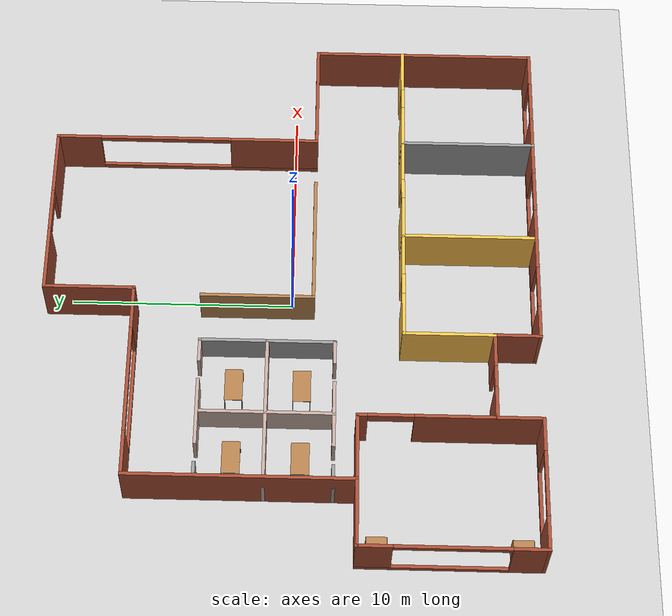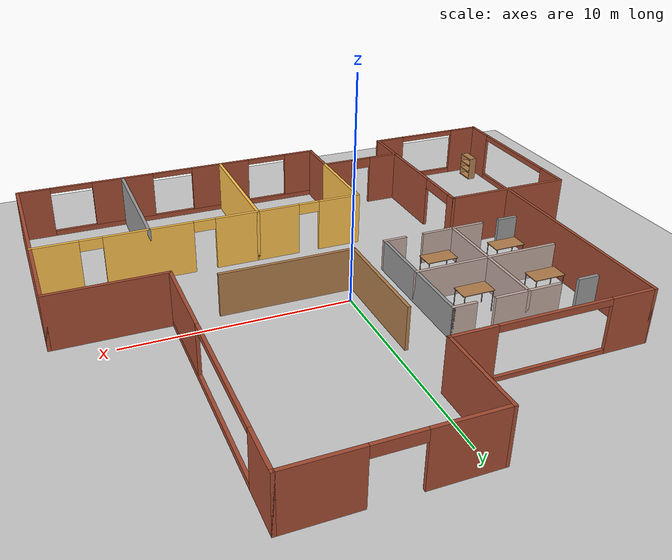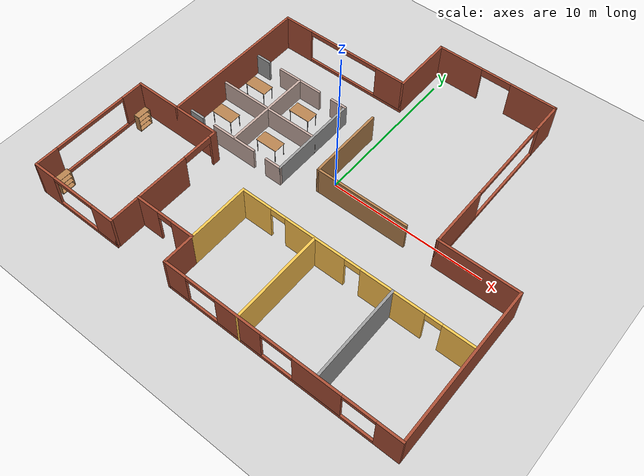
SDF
<sdf version="1.6">
 <world name="default">
  <model name="ground_plane">
   <static>1</static>
   <link name="link">
    <collision name="collision">
     <geometry><plane><normal>0 0 1</normal><size>100 100</size></plane></geometry>
     <surface><friction><ode><mu>100</mu><mu2>50</mu2></ode></friction></surface>
    </collision>
    <visual name="visual">
     <cast_shadows>0</cast_shadows>
     <geometry><plane><normal>0 0 1</normal><size>100 100</size></plane></geometry>
     <material>
      <script><uri>file://media/materials/scripts/gazebo.material</uri><name>Gazebo/Grey</name></script>
     </material>
    </visual>
   </link>
  </model>
  <model name="building">
   <pose>-0.02604 0.0665 0 0 -0 0</pose>
   <link name="Wall_0">
    <pose>-9.5 -11 0 0 -0 0</pose>
    <visual name="Wall_0_Visual_0">
     <pose>-2.2875 0 1.25 0 -0 0</pose>
     <geometry><box><size>1.575 0.15 2.5</size></box></geometry>
     <material>
      <script><uri>file://media/materials/scripts/gazebo.material</uri><name>Gazebo/Bricks</name></script>
      <ambient>1 1 1 1</ambient>
     </material>
     <meta><layer>0</layer></meta>
    </visual>
    <collision name="Wall_0_Collision_0">
     <geometry><box><size>1.575 0.15 2.5</size></box></geometry>
     <pose>-2.2875 0 1.25 0 -0 0</pose>
    </collision>
    <visual name="Wall_0_Visual_1">
     <pose>0.7875 0 0.125 0 -0 0</pose>
     <geometry><box><size>4.575 0.15 0.25</size></box></geometry>
     <material>
      <script><uri>file://media/materials/scripts/gazebo.material</uri><name>Gazebo/Bricks</name></script>
      <ambient>1 1 1 1</ambient>
     </material>
     <meta><layer>0</layer></meta>
    </visual>
    <collision name="Wall_0_Collision_1">
     <geometry><box><size>4.575 0.15 0.25</size></box></geometry>
     <pose>0.7875 0 0.125 0 -0 0</pose>
    </collision>
    <visual name="Wall_0_Visual_2">
     <pose>2.2875 0 1.375 0 -0 0</pose>
     <geometry><box><size>1.575 0.15 2.25</size></box></geometry>
     <material>
      <script><uri>file://media/materials/scripts/gazebo.material</uri><name>Gazebo/Bricks</name></script>
      <ambient>1 1 1 1</ambient>
     </material>
     <meta><layer>0</layer></meta>
    </visual>
    <collision name="Wall_0_Collision_2">
     <geometry><box><size>1.575 0.15 2.25</size></box></geometry>
     <pose>2.2875 0 1.375 0 -0 0</pose>
    </collision>
    <visual name="Wall_0_Visual_3">
     <pose>0 0 2.375 0 -0 0</pose>
     <geometry><box><size>3 0.15 0.25</size></box></geometry>
     <material>
      <script><uri>file://media/materials/scripts/gazebo.material</uri><name>Gazebo/Bricks</name></script>
      <ambient>1 1 1 1</ambient>
     </material>
     <meta><layer>0</layer></meta>
    </visual>
    <collision name="Wall_0_Collision_3">
     <geometry><box><size>3 0.15 0.25</size></box></geometry>
     <pose>0 0 2.375 0 -0 0</pose>
    </collision>
   </link>
   <link name="Wall_10">
    <pose>-5 7 0 0 -0 0</pose>
    <visual name="Wall_10_Visual_0">
     <pose>-3.53728 0 1.25 0 -0 0</pose>
     <geometry><box><size>2.07543 0.15 2.5</size></box></geometry>
     <material>
      <script><uri>file://media/materials/scripts/gazebo.material</uri><name>Gazebo/Bricks</name></script>
      <ambient>1 1 1 1</ambient>
     </material>
     <meta><layer>0</layer></meta>
    </visual>
    <collision name="Wall_10_Collision_0">
     <geometry><box><size>2.07543 0.15 2.5</size></box></geometry>
     <pose>-3.53728 0 1.25 0 -0 0</pose>
    </collision>
    <visual name="Wall_10_Visual_1">
     <pose>1.03772 0 0.1 0 -0 0</pose>
     <geometry><box><size>7.07457 0.15 0.2</size></box></geometry>
     <material>
      <script><uri>file://media/materials/scripts/gazebo.material</uri><name>Gazebo/Bricks</name></script>
      <ambient>1 1 1 1</ambient>
     </material>
     <meta><layer>0</layer></meta>
    </visual>
    <collision name="Wall_10_Collision_1">
     <geometry><box><size>7.07457 0.15 0.2</size></box></geometry>
     <pose>1.03772 0 0.1 0 -0 0</pose>
    </collision>
    <visual name="Wall_10_Visual_2">
     <pose>3.53772 0 1.35 0 -0 0</pose>
     <geometry><box><size>2.07457 0.15 2.3</size></box></geometry>
     <material>
      <script><uri>file://media/materials/scripts/gazebo.material</uri><name>Gazebo/Bricks</name></script>
      <ambient>1 1 1 1</ambient>
     </material>
     <meta><layer>0</layer></meta>
    </visual>
    <collision name="Wall_10_Collision_2">
     <geometry><box><size>2.07457 0.15 2.3</size></box></geometry>
     <pose>3.53772 0 1.35 0 -0 0</pose>
    </collision>
    <visual name="Wall_10_Visual_3">
     <pose>0.000432 0 2.35 0 -0 0</pose>
     <geometry><box><size>5 0.15 0.3</size></box></geometry>
     <material>
      <script><uri>file://media/materials/scripts/gazebo.material</uri><name>Gazebo/Bricks</name></script>
      <ambient>1 1 1 1</ambient>
     </material>
     <meta><layer>0</layer></meta>
    </visual>
    <collision name="Wall_10_Collision_3">
     <geometry><box><size>5 0.15 0.3</size></box></geometry>
     <pose>0.000432 0 2.35 0 -0 0</pose>
    </collision>
   </link>
   <link name="Wall_12">
    <collision name="Wall_12_Collision">
     <geometry><box><size>4.15 0.15 2.5</size></box></geometry>
     <pose>0 0 1.25 0 -0 0</pose>
    </collision>
    <visual name="Wall_12_Visual">
     <pose>0 0 1.25 0 -0 0</pose>
     <geometry><box><size>4.15 0.15 2.5</size></box></geometry>
     <material>
      <script><uri>file://media/materials/scripts/gazebo.material</uri><name>Gazebo/Bricks</name></script>
      <ambient>1 1 1 1</ambient>
     </material>
     <meta><layer>0</layer></meta>
    </visual>
    <pose>-0.5 9 0 0 -0 1.5708</pose>
   </link>
   <link name="Wall_13">
    <pose>3.5 11 0 0 -0 0</pose>
    <visual name="Wall_13_Visual_0">
     <pose>-2.5375 0 1.25 0 -0 0</pose>
     <geometry><box><size>3.075 0.15 2.5</size></box></geometry>
     <material>
      <script><uri>file://media/materials/scripts/gazebo.material</uri><name>Gazebo/Bricks</name></script>
      <ambient>1 1 1 1</ambient>
     </material>
     <meta><layer>0</layer></meta>
    </visual>
    <collision name="Wall_13_Collision_0">
     <geometry><box><size>3.075 0.15 2.5</size></box></geometry>
     <pose>-2.5375 0 1.25 0 -0 0</pose>
    </collision>
    <visual name="Wall_13_Visual_1">
     <pose>2.5375 0 1.25 0 -0 0</pose>
     <geometry><box><size>3.075 0.15 2.5</size></box></geometry>
     <material>
      <script><uri>file://media/materials/scripts/gazebo.material</uri><name>Gazebo/Bricks</name></script>
      <ambient>1 1 1 1</ambient>
     </material>
     <meta><layer>0</layer></meta>
    </visual>
    <collision name="Wall_13_Collision_1">
     <geometry><box><size>3.075 0.15 2.5</size></box></geometry>
     <pose>2.5375 0 1.25 0 -0 0</pose>
    </collision>
    <visual name="Wall_13_Visual_2">
     <pose>0 0 2.25 0 -0 0</pose>
     <geometry><box><size>2 0.15 0.5</size></box></geometry>
     <material>
      <script><uri>file://media/materials/scripts/gazebo.material</uri><name>Gazebo/Bricks</name></script>
      <ambient>1 1 1 1</ambient>
     </material>
     <meta><layer>0</layer></meta>
    </visual>
    <collision name="Wall_13_Collision_2">
     <geometry><box><size>2 0.15 0.5</size></box></geometry>
     <pose>0 0 2.25 0 -0 0</pose>
    </collision>
   </link>
   <link name="Wall_15">
    <pose>7.5 5 0 0 0 -1.5708</pose>
    <visual name="Wall_15_Visual_0">
     <pose>-5.0375 0 1.25 0 -0 0</pose>
     <geometry><box><size>2.075 0.15 2.5</size></box></geometry>
     <material>
      <script><uri>file://media/materials/scripts/gazebo.material</uri><name>Gazebo/Bricks</name></script>
      <ambient>1 1 1 1</ambient>
     </material>
     <meta><layer>0</layer></meta>
    </visual>
    <collision name="Wall_15_Collision_0">
     <geometry><box><size>2.075 0.15 2.5</size></box></geometry>
     <pose>-5.0375 0 1.25 0 -0 0</pose>
    </collision>
    <visual name="Wall_15_Visual_1">
     <pose>1.0375 0 0.125 0 -0 0</pose>
     <geometry><box><size>10.075 0.15 0.25</size></box></geometry>
     <material>
      <script><uri>file://media/materials/scripts/gazebo.material</uri><name>Gazebo/Bricks</name></script>
      <ambient>1 1 1 1</ambient>
     </material>
     <meta><layer>0</layer></meta>
    </visual>
    <collision name="Wall_15_Collision_1">
     <geometry><box><size>10.075 0.15 0.25</size></box></geometry>
     <pose>1.0375 0 0.125 0 -0 0</pose>
    </collision>
    <visual name="Wall_15_Visual_2">
     <pose>4.0375 0 1.375 0 -0 0</pose>
     <geometry><box><size>4.075 0.15 2.25</size></box></geometry>
     <material>
      <script><uri>file://media/materials/scripts/gazebo.material</uri><name>Gazebo/Bricks</name></script>
      <ambient>1 1 1 1</ambient>
     </material>
     <meta><layer>0</layer></meta>
    </visual>
    <collision name="Wall_15_Collision_2">
     <geometry><box><size>4.075 0.15 2.25</size></box></geometry>
     <pose>4.0375 0 1.375 0 -0 0</pose>
    </collision>
    <visual name="Wall_15_Visual_3">
     <pose>-1 0 2.375 0 -0 0</pose>
     <geometry><box><size>6 0.15 0.25</size></box></geometry>
     <material>
      <script><uri>file://media/materials/scripts/gazebo.material</uri><name>Gazebo/Bricks</name></script>
      <ambient>1 1 1 1</ambient>
     </material>
     <meta><layer>0</layer></meta>
    </visual>
    <collision name="Wall_15_Collision_3">
     <geometry><box><size>6 0.15 0.25</size></box></geometry>
     <pose>-1 0 2.375 0 -0 0</pose>
    </collision>
   </link>
   <link name="Wall_16">
    <collision name="Wall_16_Collision">
     <geometry><box><size>5.15 0.15 2.5</size></box></geometry>
     <pose>0 0 1.25 0 -0 0</pose>
    </collision>
    <visual name="Wall_16_Visual">
     <pose>0 0 1.25 0 -0 0</pose>
     <geometry><box><size>5.15 0.15 2.5</size></box></geometry>
     <material>
      <script><uri>file://media/materials/scripts/gazebo.material</uri><name>Gazebo/Bricks</name></script>
      <ambient>1 1 1 1</ambient>
     </material>
     <meta><layer>0</layer></meta>
    </visual>
    <pose>10 -1 0 0 -0 0</pose>
   </link>
   <link name="Wall_17">
    <collision name="Wall_17_Collision">
     <geometry><box><size>10.15 0.15 2.5</size></box></geometry>
     <pose>0 0 1.25 0 -0 0</pose>
    </collision>
    <visual name="Wall_17_Visual">
     <pose>0 0 1.25 0 -0 0</pose>
     <geometry><box><size>10.15 0.15 2.5</size></box></geometry>
     <material>
      <script><uri>file://media/materials/scripts/gazebo.material</uri><name>Gazebo/Bricks</name></script>
      <ambient>1 1 1 1</ambient>
     </material>
     <meta><layer>0</layer></meta>
    </visual>
    <pose>12.5 -6 0 0 0 -1.5708</pose>
   </link>
   <link name="Wall_18">
    <pose>5 -11 0 0 -0 3.14159</pose>
    <visual name="Wall_18_Visual_0">
     <pose>-6.7875 0 1.25 0 -0 0</pose>
     <geometry><box><size>1.575 0.15 2.5</size></box></geometry>
     <material>
      <script><uri>file://media/materials/scripts/gazebo.material</uri><name>Gazebo/Bricks</name></script>
      <ambient>1 1 1 1</ambient>
     </material>
     <meta><layer>0</layer></meta>
    </visual>
    <collision name="Wall_18_Collision_0">
     <geometry><box><size>1.575 0.15 2.5</size></box></geometry>
     <pose>-6.7875 0 1.25 0 -0 0</pose>
    </collision>
    <visual name="Wall_18_Visual_1">
     <pose>0.7875 0 0.125 0 -0 0</pose>
     <geometry><box><size>13.575 0.15 0.25</size></box></geometry>
     <material>
      <script><uri>file://media/materials/scripts/gazebo.material</uri><name>Gazebo/Bricks</name></script>
      <ambient>1 1 1 1</ambient>
     </material>
     <meta><layer>0</layer></meta>
    </visual>
    <collision name="Wall_18_Collision_1">
     <geometry><box><size>13.575 0.15 0.25</size></box></geometry>
     <pose>0.7875 0 0.125 0 -0 0</pose>
    </collision>
    <visual name="Wall_18_Visual_2">
     <pose>-2.5 0 1.375 0 -0 0</pose>
     <geometry><box><size>3 0.15 2.25</size></box></geometry>
     <material>
      <script><uri>file://media/materials/scripts/gazebo.material</uri><name>Gazebo/Bricks</name></script>
      <ambient>1 1 1 1</ambient>
     </material>
     <meta><layer>0</layer></meta>
    </visual>
    <collision name="Wall_18_Collision_2">
     <geometry><box><size>3 0.15 2.25</size></box></geometry>
     <pose>-2.5 0 1.375 0 -0 0</pose>
    </collision>
    <visual name="Wall_18_Visual_3">
     <pose>2.5 0 1.375 0 -0 0</pose>
     <geometry><box><size>3 0.15 2.25</size></box></geometry>
     <material>
      <script><uri>file://media/materials/scripts/gazebo.material</uri><name>Gazebo/Bricks</name></script>
      <ambient>1 1 1 1</ambient>
     </material>
     <meta><layer>0</layer></meta>
    </visual>
    <collision name="Wall_18_Collision_3">
     <geometry><box><size>3 0.15 2.25</size></box></geometry>
     <pose>2.5 0 1.375 0 -0 0</pose>
    </collision>
    <visual name="Wall_18_Visual_4">
     <pose>6.7875 0 1.375 0 -0 0</pose>
     <geometry><box><size>1.575 0.15 2.25</size></box></geometry>
     <material>
      <script><uri>file://media/materials/scripts/gazebo.material</uri><name>Gazebo/Bricks</name></script>
      <ambient>1 1 1 1</ambient>
     </material>
     <meta><layer>0</layer></meta>
    </visual>
    <collision name="Wall_18_Collision_4">
     <geometry><box><size>1.575 0.15 2.25</size></box></geometry>
     <pose>6.7875 0 1.375 0 -0 0</pose>
    </collision>
    <visual name="Wall_18_Visual_5">
     <pose>-5 0 2.375 0 -0 0</pose>
     <geometry><box><size>2 0.15 0.25</size></box></geometry>
     <material>
      <script><uri>file://media/materials/scripts/gazebo.material</uri><name>Gazebo/Bricks</name></script>
      <ambient>1 1 1 1</ambient>
     </material>
     <meta><layer>0</layer></meta>
    </visual>
    <collision name="Wall_18_Collision_5">
     <geometry><box><size>2 0.15 0.25</size></box></geometry>
     <pose>-5 0 2.375 0 -0 0</pose>
    </collision>
    <visual name="Wall_18_Visual_6">
     <pose>-0 0 2.375 0 -0 0</pose>
     <geometry><box><size>2 0.15 0.25</size></box></geometry>
     <material>
      <script><uri>file://media/materials/scripts/gazebo.material</uri><name>Gazebo/Bricks</name></script>
      <ambient>1 1 1 1</ambient>
     </material>
     <meta><layer>0</layer></meta>
    </visual>
    <collision name="Wall_18_Collision_6">
     <geometry><box><size>2 0.15 0.25</size></box></geometry>
     <pose>-0 0 2.375 0 -0 0</pose>
    </collision>
    <visual name="Wall_18_Visual_7">
     <pose>5 0 2.375 0 -0 0</pose>
     <geometry><box><size>2 0.15 0.25</size></box></geometry>
     <material>
      <script><uri>file://media/materials/scripts/gazebo.material</uri><name>Gazebo/Bricks</name></script>
      <ambient>1 1 1 1</ambient>
     </material>
     <meta><layer>0</layer></meta>
    </visual>
    <collision name="Wall_18_Collision_7">
     <geometry><box><size>2 0.15 0.25</size></box></geometry>
     <pose>5 0 2.375 0 -0 0</pose>
    </collision>
   </link>
   <link name="Wall_19">
    <collision name="Wall_19_Collision">
     <geometry><box><size>2.15 0.15 2.5</size></box></geometry>
     <pose>0 0 1.25 0 -0 0</pose>
    </collision>
    <visual name="Wall_19_Visual">
     <pose>0 0 1.25 0 -0 0</pose>
     <geometry><box><size>2.15 0.15 2.5</size></box></geometry>
     <material>
      <script><uri>file://media/materials/scripts/gazebo.material</uri><name>Gazebo/Bricks</name></script>
      <ambient>1 1 1 1</ambient>
     </material>
     <meta><layer>0</layer></meta>
    </visual>
    <pose>-2.5 -10 0 0 -0 1.5708</pose>
   </link>
   <link name="Wall_20">
    <pose>-4.5 -9 0 0 -0 3.14159</pose>
    <visual name="Wall_20_Visual_0">
     <pose>-1.2875 0 1.25 0 -0 0</pose>
     <geometry><box><size>1.575 0.15 2.5</size></box></geometry>
     <material>
      <script><uri>file://media/materials/scripts/gazebo.material</uri><name>Gazebo/Bricks</name></script>
      <ambient>1 1 1 1</ambient>
     </material>
     <meta><layer>0</layer></meta>
    </visual>
    <collision name="Wall_20_Collision_0">
     <geometry><box><size>1.575 0.15 2.5</size></box></geometry>
     <pose>-1.2875 0 1.25 0 -0 0</pose>
    </collision>
    <visual name="Wall_20_Visual_1">
     <pose>1.2875 0 1.25 0 -0 0</pose>
     <geometry><box><size>1.575 0.15 2.5</size></box></geometry>
     <material>
      <script><uri>file://media/materials/scripts/gazebo.material</uri><name>Gazebo/Bricks</name></script>
      <ambient>1 1 1 1</ambient>
     </material>
     <meta><layer>0</layer></meta>
    </visual>
    <collision name="Wall_20_Collision_1">
     <geometry><box><size>1.575 0.15 2.5</size></box></geometry>
     <pose>1.2875 0 1.25 0 -0 0</pose>
    </collision>
    <visual name="Wall_20_Visual_2">
     <pose>0 0 2.25 0 -0 0</pose>
     <geometry><box><size>1 0.15 0.5</size></box></geometry>
     <material>
      <script><uri>file://media/materials/scripts/gazebo.material</uri><name>Gazebo/Bricks</name></script>
      <ambient>1 1 1 1</ambient>
     </material>
     <meta><layer>0</layer></meta>
    </visual>
    <collision name="Wall_20_Collision_2">
     <geometry><box><size>1 0.15 0.5</size></box></geometry>
     <pose>0 0 2.25 0 -0 0</pose>
    </collision>
   </link>
   <link name="Wall_22">
    <collision name="Wall_22_Collision">
     <geometry><box><size>4.15 0.15 2.5</size></box></geometry>
     <pose>0 0 1.25 0 -0 0</pose>
    </collision>
    <visual name="Wall_22_Visual">
     <pose>0 0 1.25 0 -0 0</pose>
     <geometry><box><size>4.15 0.15 2.5</size></box></geometry>
     <material>
      <script><uri>file://media/materials/scripts/gazebo.material</uri><name>Gazebo/Grey</name></script>
      <ambient>1 0.764706 0.305882 1</ambient>
     </material>
     <meta><layer>0</layer></meta>
    </visual>
    <pose>-2.5 -7 0 0 -0 1.5708</pose>
   </link>
   <link name="Wall_23">
    <pose>5 -5 0 0 -0 0</pose>
    <visual name="Wall_23_Visual_0">
     <pose>-6.5375 0 1.25 0 -0 0</pose>
     <geometry><box><size>2.075 0.15 2.5</size></box></geometry>
     <material>
      <script><uri>file://media/materials/scripts/gazebo.material</uri><name>Gazebo/Grey</name></script>
      <ambient>1 0.764706 0.305882 1</ambient>
     </material>
     <meta><layer>0</layer></meta>
    </visual>
    <collision name="Wall_23_Collision_0">
     <geometry><box><size>2.075 0.15 2.5</size></box></geometry>
     <pose>-6.5375 0 1.25 0 -0 0</pose>
    </collision>
    <visual name="Wall_23_Visual_1">
     <pose>-2.5 0 1.25 0 -0 0</pose>
     <geometry><box><size>4 0.15 2.5</size></box></geometry>
     <material>
      <script><uri>file://media/materials/scripts/gazebo.material</uri><name>Gazebo/Grey</name></script>
      <ambient>1 0.764706 0.305882 1</ambient>
     </material>
     <meta><layer>0</layer></meta>
    </visual>
    <collision name="Wall_23_Collision_1">
     <geometry><box><size>4 0.15 2.5</size></box></geometry>
     <pose>-2.5 0 1.25 0 -0 0</pose>
    </collision>
    <visual name="Wall_23_Visual_2">
     <pose>2.5 0 1.25 0 -0 0</pose>
     <geometry><box><size>4 0.15 2.5</size></box></geometry>
     <material>
      <script><uri>file://media/materials/scripts/gazebo.material</uri><name>Gazebo/Grey</name></script>
      <ambient>1 0.764706 0.305882 1</ambient>
     </material>
     <meta><layer>0</layer></meta>
    </visual>
    <collision name="Wall_23_Collision_2">
     <geometry><box><size>4 0.15 2.5</size></box></geometry>
     <pose>2.5 0 1.25 0 -0 0</pose>
    </collision>
    <visual name="Wall_23_Visual_3">
     <pose>6.5375 0 1.25 0 -0 0</pose>
     <geometry><box><size>2.075 0.15 2.5</size></box></geometry>
     <material>
      <script><uri>file://media/materials/scripts/gazebo.material</uri><name>Gazebo/Grey</name></script>
      <ambient>1 0.764706 0.305882 1</ambient>
     </material>
     <meta><layer>0</layer></meta>
    </visual>
    <collision name="Wall_23_Collision_3">
     <geometry><box><size>2.075 0.15 2.5</size></box></geometry>
     <pose>6.5375 0 1.25 0 -0 0</pose>
    </collision>
    <visual name="Wall_23_Visual_4">
     <pose>-5 0 2.25 0 -0 0</pose>
     <geometry><box><size>1 0.15 0.5</size></box></geometry>
     <material>
      <script><uri>file://media/materials/scripts/gazebo.material</uri><name>Gazebo/Grey</name></script>
      <ambient>1 0.764706 0.305882 1</ambient>
     </material>
     <meta><layer>0</layer></meta>
    </visual>
    <collision name="Wall_23_Collision_4">
     <geometry><box><size>1 0.15 0.5</size></box></geometry>
     <pose>-5 0 2.25 0 -0 0</pose>
    </collision>
    <visual name="Wall_23_Visual_5">
     <pose>-0 0 2.25 0 -0 0</pose>
     <geometry><box><size>1 0.15 0.5</size></box></geometry>
     <material>
      <script><uri>file://media/materials/scripts/gazebo.material</uri><name>Gazebo/Grey</name></script>
      <ambient>1 0.764706 0.305882 1</ambient>
     </material>
     <meta><layer>0</layer></meta>
    </visual>
    <collision name="Wall_23_Collision_5">
     <geometry><box><size>1 0.15 0.5</size></box></geometry>
     <pose>-0 0 2.25 0 -0 0</pose>
    </collision>
    <visual name="Wall_23_Visual_6">
     <pose>5 0 2.25 0 -0 0</pose>
     <geometry><box><size>1 0.15 0.5</size></box></geometry>
     <material>
      <script><uri>file://media/materials/scripts/gazebo.material</uri><name>Gazebo/Grey</name></script>
      <ambient>1 0.764706 0.305882 1</ambient>
     </material>
     <meta><layer>0</layer></meta>
    </visual>
    <collision name="Wall_23_Collision_6">
     <geometry><box><size>1 0.15 0.5</size></box></geometry>
     <pose>5 0 2.25 0 -0 0</pose>
    </collision>
   </link>
   <link name="Wall_25">
    <collision name="Wall_25_Collision">
     <geometry><box><size>6.15 0.15 2.5</size></box></geometry>
     <pose>0 0 1.25 0 -0 0</pose>
    </collision>
    <visual name="Wall_25_Visual">
     <pose>0 0 1.25 0 -0 0</pose>
     <geometry><box><size>6.15 0.15 2.5</size></box></geometry>
     <material>
      <script><uri>file://media/materials/scripts/gazebo.material</uri><name>Gazebo/Grey</name></script>
      <ambient>1 0.764706 0.305882 1</ambient>
     </material>
     <meta><layer>0</layer></meta>
    </visual>
    <pose>2.5 -8 0 0 0 -1.5708</pose>
   </link>
   <link name="Wall_27">
    <collision name="Wall_27_Collision">
     <geometry><box><size>6.15 0.15 2.5</size></box></geometry>
     <pose>0 0 1.25 0 -0 0</pose>
    </collision>
    <visual name="Wall_27_Visual">
     <pose>0 0 1.25 0 -0 0</pose>
     <geometry><box><size>6.15 0.15 2.5</size></box></geometry>
     <material>
      <script><uri>file://media/materials/scripts/gazebo.material</uri><name>Gazebo/Grey</name></script>
      <ambient>1 1 1 1</ambient>
     </material>
     <meta><layer>0</layer></meta>
    </visual>
    <pose>7.5 -8 0 0 0 -1.5708</pose>
   </link>
   <link name="Wall_31">
    <collision name="Wall_31_Collision">
     <geometry><box><size>1.15 0.15 1.5</size></box></geometry>
     <pose>0 0 0.75 0 -0 0</pose>
    </collision>
    <visual name="Wall_31_Visual">
     <pose>0 0 0.75 0 -0 0</pose>
     <geometry><box><size>1.15 0.15 1.5</size></box></geometry>
     <material>
      <script><uri>file://media/materials/scripts/gazebo.material</uri><name>Gazebo/Grey</name></script>
      <ambient>1 1 1 1</ambient>
     </material>
     <meta><layer>0</layer></meta>
    </visual>
    <pose>-9 4 0 0 -0 0</pose>
   </link>
   <link name="Wall_33">
    <collision name="Wall_33_Collision">
     <geometry><box><size>3.15 0.15 1.5</size></box></geometry>
     <pose>0 0 0.75 0 -0 0</pose>
    </collision>
    <visual name="Wall_33_Visual">
     <pose>0 0 0.75 0 -0 0</pose>
     <geometry><box><size>3.15 0.15 1.5</size></box></geometry>
     <material>
      <script><uri>file://media/materials/scripts/gazebo.material</uri><name>Gazebo/Grey</name></script>
      <ambient>0.760784 0.662745 0.627451 1</ambient>
     </material>
     <meta><layer>0</layer></meta>
    </visual>
    <pose>-6 4 0 0 -0 0</pose>
   </link>
   <link name="Wall_35">
    <collision name="Wall_35_Collision">
     <geometry><box><size>1.15 0.15 1.5</size></box></geometry>
     <pose>0 0 0.75 0 -0 0</pose>
    </collision>
    <visual name="Wall_35_Visual">
     <pose>0 0 0.75 0 -0 0</pose>
     <geometry><box><size>1.15 0.15 1.5</size></box></geometry>
     <material>
      <script><uri>file://media/materials/scripts/gazebo.material</uri><name>Gazebo/Grey</name></script>
      <ambient>0.760784 0.662745 0.627451 1</ambient>
     </material>
     <meta><layer>0</layer></meta>
    </visual>
    <pose>-3 4 0 0 -0 0</pose>
   </link>
   <link name="Wall_36">
    <collision name="Wall_36_Collision">
     <geometry><box><size>6.15 0.15 1.5</size></box></geometry>
     <pose>0 0 0.75 0 -0 0</pose>
    </collision>
    <visual name="Wall_36_Visual">
     <pose>0 0 0.75 0 -0 0</pose>
     <geometry><box><size>6.15 0.15 1.5</size></box></geometry>
     <material>
      <script><uri>file://media/materials/scripts/gazebo.material</uri><name>Gazebo/Grey</name></script>
      <ambient>1 1 1 1</ambient>
     </material>
     <meta><layer>0</layer></meta>
    </visual>
    <pose>-2.5 1 0 0 0 -1.5708</pose>
   </link>
   <link name="Wall_38">
    <collision name="Wall_38_Collision">
     <geometry><box><size>1.15 0.15 1.5</size></box></geometry>
     <pose>0 0 0.75 0 -0 0</pose>
    </collision>
    <visual name="Wall_38_Visual">
     <pose>0 0 0.75 0 -0 0</pose>
     <geometry><box><size>1.15 0.15 1.5</size></box></geometry>
     <material>
      <script><uri>file://media/materials/scripts/gazebo.material</uri><name>Gazebo/Grey</name></script>
      <ambient>0.760784 0.662745 0.627451 1</ambient>
     </material>
     <meta><layer>0</layer></meta>
    </visual>
    <pose>-3 -2 0 0 -0 3.14159</pose>
   </link>
   <link name="Wall_40">
    <collision name="Wall_40_Collision">
     <geometry><box><size>3.15 0.15 1.5</size></box></geometry>
     <pose>0 0 0.75 0 -0 0</pose>
    </collision>
    <visual name="Wall_40_Visual">
     <pose>0 0 0.75 0 -0 0</pose>
     <geometry><box><size>3.15 0.15 1.5</size></box></geometry>
     <material>
      <script><uri>file://media/materials/scripts/gazebo.material</uri><name>Gazebo/Grey</name></script>
      <ambient>0.760784 0.662745 0.627451 1</ambient>
     </material>
     <meta><layer>0</layer></meta>
    </visual>
    <pose>-6 -2 0 0 -0 3.14159</pose>
   </link>
   <link name="Wall_42">
    <collision name="Wall_42_Collision">
     <geometry><box><size>1.15 0.15 1.5</size></box></geometry>
     <pose>0 0 0.75 0 -0 0</pose>
    </collision>
    <visual name="Wall_42_Visual">
     <pose>0 0 0.75 0 -0 0</pose>
     <geometry><box><size>1.15 0.15 1.5</size></box></geometry>
     <material>
      <script><uri>file://media/materials/scripts/gazebo.material</uri><name>Gazebo/Grey</name></script>
      <ambient>1 1 1 1</ambient>
     </material>
     <meta><layer>0</layer></meta>
    </visual>
    <pose>-9 -2 0 0 -0 3.14159</pose>
   </link>
   <link name="Wall_44">
    <collision name="Wall_44_Collision">
     <geometry><box><size>6.15 0.15 1.5</size></box></geometry>
     <pose>0 0 0.75 0 -0 0</pose>
    </collision>
    <visual name="Wall_44_Visual">
     <pose>0 0 0.75 0 -0 0</pose>
     <geometry><box><size>6.15 0.15 1.5</size></box></geometry>
     <material>
      <script><uri>file://media/materials/scripts/gazebo.material</uri><name>Gazebo/Grey</name></script>
      <ambient>0.760784 0.662745 0.627451 1</ambient>
     </material>
     <meta><layer>0</layer></meta>
    </visual>
    <pose>-6 1 0 0 0 -1.5708</pose>
   </link>
   <link name="Wall_46">
    <collision name="Wall_46_Collision">
     <geometry><box><size>7.15 0.15 1.5</size></box></geometry>
     <pose>0 0 0.75 0 -0 0</pose>
    </collision>
    <visual name="Wall_46_Visual">
     <pose>0 0 0.75 0 -0 0</pose>
     <geometry><box><size>7.15 0.15 1.5</size></box></geometry>
     <material>
      <script><uri>file://media/materials/scripts/gazebo.material</uri><name>Gazebo/Grey</name></script>
      <ambient>0.760784 0.662745 0.627451 1</ambient>
     </material>
     <meta><layer>0</layer></meta>
    </visual>
    <pose>-6 1 0 0 -0 0</pose>
   </link>
   <link name="Wall_48">
    <collision name="Wall_48_Collision">
     <geometry><box><size>5.15 0.15 2</size></box></geometry>
     <pose>0 0 1 0 -0 0</pose>
    </collision>
    <visual name="Wall_48_Visual">
     <pose>0 0 1 0 -0 0</pose>
     <geometry><box><size>5.15 0.15 2</size></box></geometry>
     <material>
      <script><uri>file://media/materials/scripts/gazebo.material</uri><name>Gazebo/Wood</name></script>
      <ambient>0.760784 0.662745 0.627451 1</ambient>
     </material>
     <meta><layer>0</layer></meta>
    </visual>
    <pose>-0.5 1.5 0 0 0 -1.5708</pose>
   </link>
   <link name="Wall_49">
    <collision name="Wall_49_Collision">
     <geometry><box><size>6.15 0.15 2</size></box></geometry>
     <pose>0 0 1 0 -0 0</pose>
    </collision>
    <visual name="Wall_49_Visual">
     <pose>0 0 1 0 -0 0</pose>
     <geometry><box><size>6.15 0.15 2</size></box></geometry>
     <material>
      <script><uri>file://media/materials/scripts/gazebo.material</uri><name>Gazebo/Wood</name></script>
      <ambient>0.760784 0.662745 0.627451 1</ambient>
     </material>
     <meta><layer>0</layer></meta>
    </visual>
    <pose>2.5 -1 0 0 -0 0</pose>
   </link>
   <link name="Wall_5">
    <pose>-12.5 -7 0 0 -0 1.5708</pose>
    <visual name="Wall_5_Visual_0">
     <pose>-3.2875 0 1.25 0 -0 0</pose>
     <geometry><box><size>1.575 0.15 2.5</size></box></geometry>
     <material>
      <script><uri>file://media/materials/scripts/gazebo.material</uri><name>Gazebo/Bricks</name></script>
      <ambient>1 1 1 1</ambient>
     </material>
     <meta><layer>0</layer></meta>
    </visual>
    <collision name="Wall_5_Collision_0">
     <geometry><box><size>1.575 0.15 2.5</size></box></geometry>
     <pose>-3.2875 0 1.25 0 -0 0</pose>
    </collision>
    <visual name="Wall_5_Visual_1">
     <pose>0.7875 0 0.125 0 -0 0</pose>
     <geometry><box><size>6.575 0.15 0.25</size></box></geometry>
     <material>
      <script><uri>file://media/materials/scripts/gazebo.material</uri><name>Gazebo/Bricks</name></script>
      <ambient>1 1 1 1</ambient>
     </material>
     <meta><layer>0</layer></meta>
    </visual>
    <collision name="Wall_5_Collision_1">
     <geometry><box><size>6.575 0.15 0.25</size></box></geometry>
     <pose>0.7875 0 0.125 0 -0 0</pose>
    </collision>
    <visual name="Wall_5_Visual_2">
     <pose>3.2875 0 1.375 0 -0 0</pose>
     <geometry><box><size>1.575 0.15 2.25</size></box></geometry>
     <material>
      <script><uri>file://media/materials/scripts/gazebo.material</uri><name>Gazebo/Bricks</name></script>
      <ambient>1 1 1 1</ambient>
     </material>
     <meta><layer>0</layer></meta>
    </visual>
    <collision name="Wall_5_Collision_2">
     <geometry><box><size>1.575 0.15 2.25</size></box></geometry>
     <pose>3.2875 0 1.375 0 -0 0</pose>
    </collision>
    <visual name="Wall_5_Visual_3">
     <pose>0 0 2.375 0 -0 0</pose>
     <geometry><box><size>5 0.15 0.25</size></box></geometry>
     <material>
      <script><uri>file://media/materials/scripts/gazebo.material</uri><name>Gazebo/Bricks</name></script>
      <ambient>1 1 1 1</ambient>
     </material>
     <meta><layer>0</layer></meta>
    </visual>
    <collision name="Wall_5_Collision_3">
     <geometry><box><size>5 0.15 0.25</size></box></geometry>
     <pose>0 0 2.375 0 -0 0</pose>
    </collision>
   </link>
   <link name="Wall_6">
    <collision name="Wall_6_Collision">
     <geometry><box><size>6.15 0.15 2.5</size></box></geometry>
     <pose>0 0 1.25 0 -0 0</pose>
    </collision>
    <visual name="Wall_6_Visual">
     <pose>0 0 1.25 0 -0 0</pose>
     <geometry><box><size>6.15 0.15 2.5</size></box></geometry>
     <material>
      <script><uri>file://media/materials/scripts/gazebo.material</uri><name>Gazebo/Bricks</name></script>
      <ambient>1 1 1 1</ambient>
     </material>
     <meta><layer>0</layer></meta>
    </visual>
    <pose>-9.5 -3 0 0 -0 0</pose>
   </link>
   <link name="Wall_7">
    <pose>-6.5 -7 0 0 0 -1.5708</pose>
    <visual name="Wall_7_Visual_0">
     <pose>-3.82228 0 1.25 0 -0 0</pose>
     <geometry><box><size>0.505444 0.15 2.5</size></box></geometry>
     <material>
      <script><uri>file://media/materials/scripts/gazebo.material</uri><name>Gazebo/Bricks</name></script>
      <ambient>1 1 1 1</ambient>
     </material>
     <meta><layer>0</layer></meta>
    </visual>
    <collision name="Wall_7_Collision_0">
     <geometry><box><size>0.505444 0.15 2.5</size></box></geometry>
     <pose>-3.82228 0 1.25 0 -0 0</pose>
    </collision>
    <visual name="Wall_7_Visual_1">
     <pose>1.25272 0 1.25 0 -0 0</pose>
     <geometry><box><size>5.64456 0.15 2.5</size></box></geometry>
     <material>
      <script><uri>file://media/materials/scripts/gazebo.material</uri><name>Gazebo/Bricks</name></script>
      <ambient>1 1 1 1</ambient>
     </material>
     <meta><layer>0</layer></meta>
    </visual>
    <collision name="Wall_7_Collision_1">
     <geometry><box><size>5.64456 0.15 2.5</size></box></geometry>
     <pose>1.25272 0 1.25 0 -0 0</pose>
    </collision>
    <visual name="Wall_7_Visual_2">
     <pose>-2.56956 0 2.25 0 -0 0</pose>
     <geometry><box><size>2 0.15 0.5</size></box></geometry>
     <material>
      <script><uri>file://media/materials/scripts/gazebo.material</uri><name>Gazebo/Bricks</name></script>
      <ambient>1 1 1 1</ambient>
     </material>
     <meta><layer>0</layer></meta>
    </visual>
    <collision name="Wall_7_Collision_2">
     <geometry><box><size>2 0.15 0.5</size></box></geometry>
     <pose>-2.56956 0 2.25 0 -0 0</pose>
    </collision>
   </link>
   <link name="Wall_9">
    <collision name="Wall_9_Collision">
     <geometry><box><size>10.15 0.15 2.5</size></box></geometry>
     <pose>0 0 1.25 0 -0 0</pose>
    </collision>
    <visual name="Wall_9_Visual">
     <pose>0 0 1.25 0 -0 0</pose>
     <geometry><box><size>10.15 0.15 2.5</size></box></geometry>
     <material>
      <script><uri>file://media/materials/scripts/gazebo.material</uri><name>Gazebo/Bricks</name></script>
      <ambient>1 1 1 1</ambient>
     </material>
     <meta><layer>0</layer></meta>
    </visual>
    <pose>-9.5 2 0 0 -0 1.5708</pose>
   </link>
   <static>1</static>
  </model>
  <model name="bookshelf">
   <static>1</static>
   <link name="link">
    <inertial><mass>1</mass></inertial>
    <collision name="back">
     <pose>0 0.005 0.6 0 -0 0</pose>
     <geometry><box><size>0.9 0.01 1.2</size></box></geometry>
    </collision>
    <visual name="visual1">
     <pose>0 0.005 0.6 0 -0 0</pose>
     <geometry><box><size>0.9 0.01 1.2</size></box></geometry>
     <material>
      <script><uri>file://media/materials/scripts/gazebo.material</uri><name>Gazebo/Wood</name></script>
     </material>
    </visual>
    <collision name="left_side">
     <pose>0.45 -0.195 0.6 0 -0 0</pose>
     <geometry><box><size>0.02 0.4 1.2</size></box></geometry>
    </collision>
    <visual name="visual2">
     <pose>0.45 -0.195 0.6 0 -0 0</pose>
     <geometry><box><size>0.02 0.4 1.2</size></box></geometry>
     <material>
      <script><uri>file://media/materials/scripts/gazebo.material</uri><name>Gazebo/Wood</name></script>
     </material>
    </visual>
    <collision name="right_side">
     <pose>-0.45 -0.195 0.6 0 -0 0</pose>
     <geometry><box><size>0.02 0.4 1.2</size></box></geometry>
    </collision>
    <visual name="visual3">
     <pose>-0.45 -0.195 0.6 0 -0 0</pose>
     <geometry><box><size>0.02 0.4 1.2</size></box></geometry>
     <material>
      <script><uri>file://media/materials/scripts/gazebo.material</uri><name>Gazebo/Wood</name></script>
     </material>
    </visual>
    <collision name="bottom">
     <pose>0 -0.195 0.03 0 -0 0</pose>
     <geometry><box><size>0.88 0.4 0.06</size></box></geometry>
    </collision>
    <visual name="visual4">
     <pose>0 -0.195 0.03 0 -0 0</pose>
     <geometry><box><size>0.88 0.4 0.06</size></box></geometry>
     <material>
      <script><uri>file://media/materials/scripts/gazebo.material</uri><name>Gazebo/Wood</name></script>
     </material>
    </visual>
    <collision name="top">
     <pose>0 -0.195 1.19 0 -0 0</pose>
     <geometry><box><size>0.88 0.4 0.02</size></box></geometry>
    </collision>
    <visual name="visual5">
     <pose>0 -0.195 1.19 0 -0 0</pose>
     <geometry><box><size>0.88 0.4 0.02</size></box></geometry>
     <material>
      <script><uri>file://media/materials/scripts/gazebo.material</uri><name>Gazebo/Wood</name></script>
     </material>
    </visual>
    <collision name="low_shelf">
     <pose>0 -0.195 0.43 0 -0 0</pose>
     <geometry><box><size>0.88 0.4 0.02</size></box></geometry>
    </collision>
    <visual name="visual6">
     <pose>0 -0.195 0.43 0 -0 0</pose>
     <geometry><box><size>0.88 0.4 0.02</size></box></geometry>
     <material>
      <script><uri>file://media/materials/scripts/gazebo.material</uri><name>Gazebo/Wood</name></script>
     </material>
    </visual>
    <collision name="high_shelf">
     <pose>0 -0.195 0.8 0 -0 0</pose>
     <geometry><box><size>0.88 0.4 0.02</size></box></geometry>
    </collision>
    <visual name="visual7">
     <pose>0 -0.195 0.8 0 -0 0</pose>
     <geometry><box><size>0.88 0.4 0.02</size></box></geometry>
     <material>
      <script><uri>file://media/materials/scripts/gazebo.material</uri><name>Gazebo/Wood</name></script>
     </material>
    </visual>
   </link>
   <pose>-12 -10 -0.017254 0 -0 1.57075</pose>
  </model>
  <model name="bookshelf_clone">
   <static>1</static>
   <link name="link">
    <inertial><mass>1</mass></inertial>
    <collision name="back">
     <pose>0 0.005 0.6 0 -0 0</pose>
     <geometry><box><size>0.9 0.01 1.2</size></box></geometry>
    </collision>
    <visual name="visual1">
     <pose>0 0.005 0.6 0 -0 0</pose>
     <geometry><box><size>0.9 0.01 1.2</size></box></geometry>
     <material>
      <script><uri>file://media/materials/scripts/gazebo.material</uri><name>Gazebo/Wood</name></script>
     </material>
    </visual>
    <collision name="left_side">
     <pose>0.45 -0.195 0.6 0 -0 0</pose>
     <geometry><box><size>0.02 0.4 1.2</size></box></geometry>
    </collision>
    <visual name="visual2">
     <pose>0.45 -0.195 0.6 0 -0 0</pose>
     <geometry><box><size>0.02 0.4 1.2</size></box></geometry>
     <material>
      <script><uri>file://media/materials/scripts/gazebo.material</uri><name>Gazebo/Wood</name></script>
     </material>
    </visual>
    <collision name="right_side">
     <pose>-0.45 -0.195 0.6 0 -0 0</pose>
     <geometry><box><size>0.02 0.4 1.2</size></box></geometry>
    </collision>
    <visual name="visual3">
     <pose>-0.45 -0.195 0.6 0 -0 0</pose>
     <geometry><box><size>0.02 0.4 1.2</size></box></geometry>
     <material>
      <script><uri>file://media/materials/scripts/gazebo.material</uri><name>Gazebo/Wood</name></script>
     </material>
    </visual>
    <collision name="bottom">
     <pose>0 -0.195 0.03 0 -0 0</pose>
     <geometry><box><size>0.88 0.4 0.06</size></box></geometry>
    </collision>
    <visual name="visual4">
     <pose>0 -0.195 0.03 0 -0 0</pose>
     <geometry><box><size>0.88 0.4 0.06</size></box></geometry>
     <material>
      <script><uri>file://media/materials/scripts/gazebo.material</uri><name>Gazebo/Wood</name></script>
     </material>
    </visual>
    <collision name="top">
     <pose>0 -0.195 1.19 0 -0 0</pose>
     <geometry><box><size>0.88 0.4 0.02</size></box></geometry>
    </collision>
    <visual name="visual5">
     <pose>0 -0.195 1.19 0 -0 0</pose>
     <geometry><box><size>0.88 0.4 0.02</size></box></geometry>
     <material>
      <script><uri>file://media/materials/scripts/gazebo.material</uri><name>Gazebo/Wood</name></script>
     </material>
    </visual>
    <collision name="low_shelf">
     <pose>0 -0.195 0.43 0 -0 0</pose>
     <geometry><box><size>0.88 0.4 0.02</size></box></geometry>
    </collision>
    <visual name="visual6">
     <pose>0 -0.195 0.43 0 -0 0</pose>
     <geometry><box><size>0.88 0.4 0.02</size></box></geometry>
     <material>
      <script><uri>file://media/materials/scripts/gazebo.material</uri><name>Gazebo/Wood</name></script>
     </material>
    </visual>
    <collision name="high_shelf">
     <pose>0 -0.195 0.8 0 -0 0</pose>
     <geometry><box><size>0.88 0.4 0.02</size></box></geometry>
    </collision>
    <visual name="visual7">
     <pose>0 -0.195 0.8 0 -0 0</pose>
     <geometry><box><size>0.88 0.4 0.02</size></box></geometry>
     <material>
      <script><uri>file://media/materials/scripts/gazebo.material</uri><name>Gazebo/Wood</name></script>
     </material>
    </visual>
   </link>
   <pose>-12 -3.8 0 0 -0 1.57075</pose>
  </model>
  <model name="table">
   <static>1</static>
   <link name="link">
    <collision name="surface">
     <pose>0 0 1 0 -0 0</pose>
     <geometry><box><size>1.5 0.8 0.03</size></box></geometry>
     <surface><friction><ode><mu>0.6</mu><mu2>0.6</mu2></ode></friction></surface>
    </collision>
    <visual name="visual1">
     <pose>0 0 1 0 -0 0</pose>
     <geometry><box><size>1.5 0.8 0.03</size></box></geometry>
     <material>
      <script><uri>file://media/materials/scripts/gazebo.material</uri><name>Gazebo/Wood</name></script>
     </material>
    </visual>
    <collision name="front_left_leg">
     <pose>0.68 0.38 0.5 0 -0 0</pose>
     <geometry><cylinder><radius>0.02</radius><length>1</length></cylinder></geometry>
    </collision>
    <visual name="front_left_leg">
     <pose>0.68 0.38 0.5 0 -0 0</pose>
     <geometry><cylinder><radius>0.02</radius><length>1</length></cylinder></geometry>
     <material>
      <script><uri>file://media/materials/scripts/gazebo.material</uri><name>Gazebo/Grey</name></script>
     </material>
    </visual>
    <collision name="front_right_leg">
     <pose>0.68 -0.38 0.5 0 -0 0</pose>
     <geometry><cylinder><radius>0.02</radius><length>1</length></cylinder></geometry>
    </collision>
    <visual name="front_right_leg">
     <pose>0.68 -0.38 0.5 0 -0 0</pose>
     <geometry><cylinder><radius>0.02</radius><length>1</length></cylinder></geometry>
     <material>
      <script><uri>file://media/materials/scripts/gazebo.material</uri><name>Gazebo/Grey</name></script>
     </material>
    </visual>
    <collision name="back_right_leg">
     <pose>-0.68 -0.38 0.5 0 -0 0</pose>
     <geometry><cylinder><radius>0.02</radius><length>1</length></cylinder></geometry>
    </collision>
    <visual name="back_right_leg">
     <pose>-0.68 -0.38 0.5 0 -0 0</pose>
     <geometry><cylinder><radius>0.02</radius><length>1</length></cylinder></geometry>
     <material>
      <script><uri>file://media/materials/scripts/gazebo.material</uri><name>Gazebo/Grey</name></script>
     </material>
    </visual>
    <collision name="back_left_leg">
     <pose>-0.68 0.38 0.5 0 -0 0</pose>
     <geometry><cylinder><radius>0.02</radius><length>1</length></cylinder></geometry>
    </collision>
    <visual name="back_left_leg">
     <pose>-0.68 0.38 0.5 0 -0 0</pose>
     <geometry><cylinder><radius>0.02</radius><length>1</length></cylinder></geometry>
     <material>
      <script><uri>file://media/materials/scripts/gazebo.material</uri><name>Gazebo/Grey</name></script>
     </material>
    </visual>
   </link>
   <pose>-4.5 -0.5 0 0 -0 0</pose>
  </model>
  <model name="table_clone">
   <static>1</static>
   <link name="link">
    <collision name="surface">
     <pose>0 0 1 0 -0 0</pose>
     <geometry><box><size>1.5 0.8 0.03</size></box></geometry>
     <surface><friction><ode><mu>0.6</mu><mu2>0.6</mu2></ode></friction></surface>
    </collision>
    <visual name="visual1">
     <pose>0 0 1 0 -0 0</pose>
     <geometry><box><size>1.5 0.8 0.03</size></box></geometry>
     <material>
      <script><uri>file://media/materials/scripts/gazebo.material</uri><name>Gazebo/Wood</name></script>
     </material>
    </visual>
    <collision name="front_left_leg">
     <pose>0.68 0.38 0.5 0 -0 0</pose>
     <geometry><cylinder><radius>0.02</radius><length>1</length></cylinder></geometry>
    </collision>
    <visual name="front_left_leg">
     <pose>0.68 0.38 0.5 0 -0 0</pose>
     <geometry><cylinder><radius>0.02</radius><length>1</length></cylinder></geometry>
     <material>
      <script><uri>file://media/materials/scripts/gazebo.material</uri><name>Gazebo/Grey</name></script>
     </material>
    </visual>
    <collision name="front_right_leg">
     <pose>0.68 -0.38 0.5 0 -0 0</pose>
     <geometry><cylinder><radius>0.02</radius><length>1</length></cylinder></geometry>
    </collision>
    <visual name="front_right_leg">
     <pose>0.68 -0.38 0.5 0 -0 0</pose>
     <geometry><cylinder><radius>0.02</radius><length>1</length></cylinder></geometry>
     <material>
      <script><uri>file://media/materials/scripts/gazebo.material</uri><name>Gazebo/Grey</name></script>
     </material>
    </visual>
    <collision name="back_right_leg">
     <pose>-0.68 -0.38 0.5 0 -0 0</pose>
     <geometry><cylinder><radius>0.02</radius><length>1</length></cylinder></geometry>
    </collision>
    <visual name="back_right_leg">
     <pose>-0.68 -0.38 0.5 0 -0 0</pose>
     <geometry><cylinder><radius>0.02</radius><length>1</length></cylinder></geometry>
     <material>
      <script><uri>file://media/materials/scripts/gazebo.material</uri><name>Gazebo/Grey</name></script>
     </material>
    </visual>
    <collision name="back_left_leg">
     <pose>-0.68 0.38 0.5 0 -0 0</pose>
     <geometry><cylinder><radius>0.02</radius><length>1</length></cylinder></geometry>
    </collision>
    <visual name="back_left_leg">
     <pose>-0.68 0.38 0.5 0 -0 0</pose>
     <geometry><cylinder><radius>0.02</radius><length>1</length></cylinder></geometry>
     <material>
      <script><uri>file://media/materials/scripts/gazebo.material</uri><name>Gazebo/Grey</name></script>
     </material>
    </visual>
   </link>
   <pose>-4.5 2.5 0 0 -0 0</pose>
  </model>
  <model name="table_clone_0">
   <static>1</static>
   <link name="link">
    <collision name="surface">
     <pose>0 0 1 0 -0 0</pose>
     <geometry><box><size>1.5 0.8 0.03</size></box></geometry>
     <surface><friction><ode><mu>0.6</mu><mu2>0.6</mu2></ode></friction></surface>
    </collision>
    <visual name="visual1">
     <pose>0 0 1 0 -0 0</pose>
     <geometry><box><size>1.5 0.8 0.03</size></box></geometry>
     <material>
      <script><uri>file://media/materials/scripts/gazebo.material</uri><name>Gazebo/Wood</name></script>
     </material>
    </visual>
    <collision name="front_left_leg">
     <pose>0.68 0.38 0.5 0 -0 0</pose>
     <geometry><cylinder><radius>0.02</radius><length>1</length></cylinder></geometry>
    </collision>
    <visual name="front_left_leg">
     <pose>0.68 0.38 0.5 0 -0 0</pose>
     <geometry><cylinder><radius>0.02</radius><length>1</length></cylinder></geometry>
     <material>
      <script><uri>file://media/materials/scripts/gazebo.material</uri><name>Gazebo/Grey</name></script>
     </material>
    </visual>
    <collision name="front_right_leg">
     <pose>0.68 -0.38 0.5 0 -0 0</pose>
     <geometry><cylinder><radius>0.02</radius><length>1</length></cylinder></geometry>
    </collision>
    <visual name="front_right_leg">
     <pose>0.68 -0.38 0.5 0 -0 0</pose>
     <geometry><cylinder><radius>0.02</radius><length>1</length></cylinder></geometry>
     <material>
      <script><uri>file://media/materials/scripts/gazebo.material</uri><name>Gazebo/Grey</name></script>
     </material>
    </visual>
    <collision name="back_right_leg">
     <pose>-0.68 -0.38 0.5 0 -0 0</pose>
     <geometry><cylinder><radius>0.02</radius><length>1</length></cylinder></geometry>
    </collision>
    <visual name="back_right_leg">
     <pose>-0.68 -0.38 0.5 0 -0 0</pose>
     <geometry><cylinder><radius>0.02</radius><length>1</length></cylinder></geometry>
     <material>
      <script><uri>file://media/materials/scripts/gazebo.material</uri><name>Gazebo/Grey</name></script>
     </material>
    </visual>
    <collision name="back_left_leg">
     <pose>-0.68 0.38 0.5 0 -0 0</pose>
     <geometry><cylinder><radius>0.02</radius><length>1</length></cylinder></geometry>
    </collision>
    <visual name="back_left_leg">
     <pose>-0.68 0.38 0.5 0 -0 0</pose>
     <geometry><cylinder><radius>0.02</radius><length>1</length></cylinder></geometry>
     <material>
      <script><uri>file://media/materials/scripts/gazebo.material</uri><name>Gazebo/Grey</name></script>
     </material>
    </visual>
   </link>
   <pose>-8 2.5 0 0 -0 0</pose>
  </model>
  <model name="table_clone_1">
   <static>1</static>
   <link name="link">
    <collision name="surface">
     <pose>0 0 1 0 -0 0</pose>
     <geometry><box><size>1.5 0.8 0.03</size></box></geometry>
     <surface><friction><ode><mu>0.6</mu><mu2>0.6</mu2></ode></friction></surface>
    </collision>
    <visual name="visual1">
     <pose>0 0 1 0 -0 0</pose>
     <geometry><box><size>1.5 0.8 0.03</size></box></geometry>
     <material>
      <script><uri>file://media/materials/scripts/gazebo.material</uri><name>Gazebo/Wood</name></script>
     </material>
    </visual>
    <collision name="front_left_leg">
     <pose>0.68 0.38 0.5 0 -0 0</pose>
     <geometry><cylinder><radius>0.02</radius><length>1</length></cylinder></geometry>
    </collision>
    <visual name="front_left_leg">
     <pose>0.68 0.38 0.5 0 -0 0</pose>
     <geometry><cylinder><radius>0.02</radius><length>1</length></cylinder></geometry>
     <material>
      <script><uri>file://media/materials/scripts/gazebo.material</uri><name>Gazebo/Grey</name></script>
     </material>
    </visual>
    <collision name="front_right_leg">
     <pose>0.68 -0.38 0.5 0 -0 0</pose>
     <geometry><cylinder><radius>0.02</radius><length>1</length></cylinder></geometry>
    </collision>
    <visual name="front_right_leg">
     <pose>0.68 -0.38 0.5 0 -0 0</pose>
     <geometry><cylinder><radius>0.02</radius><length>1</length></cylinder></geometry>
     <material>
      <script><uri>file://media/materials/scripts/gazebo.material</uri><name>Gazebo/Grey</name></script>
     </material>
    </visual>
    <collision name="back_right_leg">
     <pose>-0.68 -0.38 0.5 0 -0 0</pose>
     <geometry><cylinder><radius>0.02</radius><length>1</length></cylinder></geometry>
    </collision>
    <visual name="back_right_leg">
     <pose>-0.68 -0.38 0.5 0 -0 0</pose>
     <geometry><cylinder><radius>0.02</radius><length>1</length></cylinder></geometry>
     <material>
      <script><uri>file://media/materials/scripts/gazebo.material</uri><name>Gazebo/Grey</name></script>
     </material>
    </visual>
    <collision name="back_left_leg">
     <pose>-0.68 0.38 0.5 0 -0 0</pose>
     <geometry><cylinder><radius>0.02</radius><length>1</length></cylinder></geometry>
    </collision>
    <visual name="back_left_leg">
     <pose>-0.68 0.38 0.5 0 -0 0</pose>
     <geometry><cylinder><radius>0.02</radius><length>1</length></cylinder></geometry>
     <material>
      <script><uri>file://media/materials/scripts/gazebo.material</uri><name>Gazebo/Grey</name></script>
     </material>
    </visual>
   </link>
   <pose>-8 -0.5 0 0 -0 0</pose>
  </model>
 </world>
</sdf>
